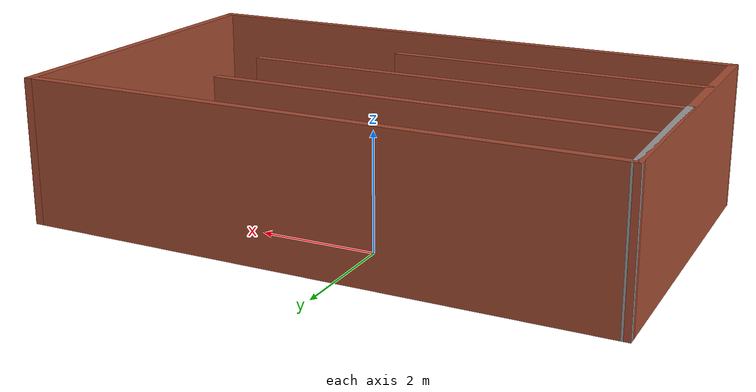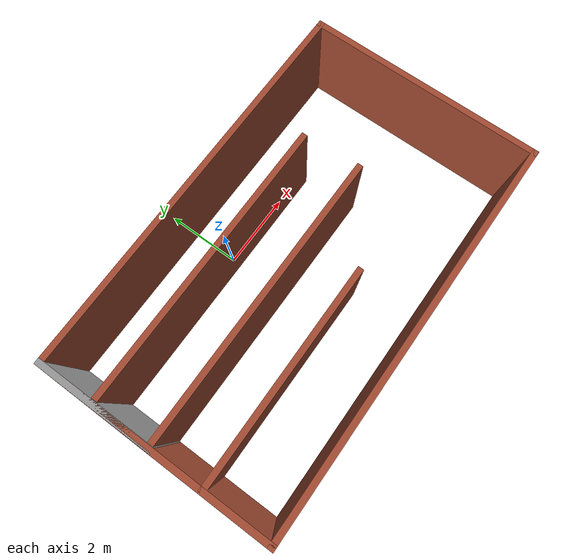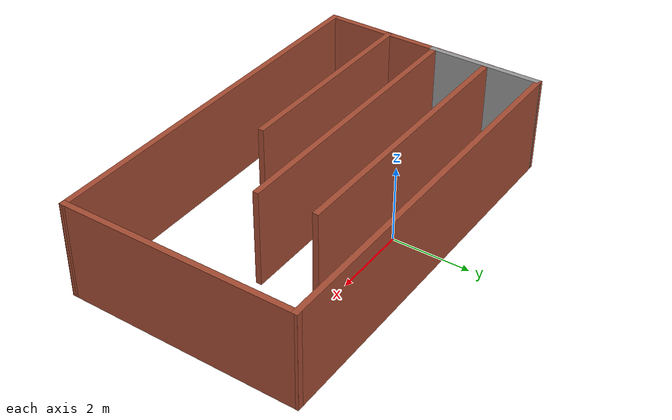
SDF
<?xml version='1.0'?>
<sdf version='1.7'>
  <model name='sample_maze'>
    <pose>0.574925 -1.69761 0 0 -0 0</pose>
    <link name='Wall_0'>
      <collision name='Wall_0_Collision'>
        <geometry>
          <box>
            <size>3.03529 0.15 2.5</size>
          </box>
        </geometry>
        <pose>0 0 1.25 0 -0 0</pose>
      </collision>
      <visual name='Wall_0_Visual'>
        <pose>0 0 1.25 0 -0 0</pose>
        <geometry>
          <box>
            <size>3.03529 0.15 2.5</size>
          </box>
        </geometry>
        <material>
          <script>
            <uri>file://media/materials/scripts/gazebo.material</uri>
            <name>Gazebo/Grey</name>
          </script>
          <ambient>1 1 1 1</ambient>
        </material>
        <meta>
          <layer>0</layer>
        </meta>
      </visual>
      <pose>-4.98487 1.49994 0 0 -0 1.57769</pose>
    </link>
    <link name='Wall_1'>
      <collision name='Wall_1_Collision'>
        <geometry>
          <box>
            <size>6.03552 0.15 2.5</size>
          </box>
        </geometry>
        <pose>0 0 1.25 0 -0 0</pose>
      </collision>
      <visual name='Wall_1_Visual'>
        <pose>0 0 1.25 0 -0 0</pose>
        <geometry>
          <box>
            <size>6.03552 0.15 2.5</size>
          </box>
        </geometry>
        <material>
          <script>
            <uri>file://media/materials/scripts/gazebo.material</uri>
            <name>Gazebo/Bricks</name>
          </script>
          <ambient>1 1 1 1</ambient>
        </material>
        <meta>
          <layer>0</layer>
        </meta>
      </visual>
      <pose>-4.98487 -6.5e-05 0 0 -0 -1.56742</pose>
    </link>
    <link name='Wall_10'>
      <collision name='Wall_10_Collision'>
        <geometry>
          <box>
            <size>7.25 0.15 2.5</size>
          </box>
        </geometry>
        <pose>0 0 1.25 0 -0 0</pose>
      </collision>
      <visual name='Wall_10_Visual'>
        <pose>0 0 1.25 0 -0 0</pose>
        <geometry>
          <box>
            <size>7.25 0.15 2.5</size>
          </box>
        </geometry>
        <material>
          <script>
            <uri>file://media/materials/scripts/gazebo.material</uri>
            <name>Gazebo/Bricks</name>
          </script>
          <ambient>1 1 1 1</ambient>
        </material>
        <meta>
          <layer>0</layer>
        </meta>
      </visual>
      <pose>-1.27402 1.54146 0 0 -0 0</pose>
    </link>
    <link name='Wall_2'>
      <collision name='Wall_2_Collision'>
        <geometry>
          <box>
            <size>10.12 0.15 2.5</size>
          </box>
        </geometry>
        <pose>0 0 1.25 0 -0 0</pose>
      </collision>
      <visual name='Wall_2_Visual'>
        <pose>0 0 1.25 0 -0 0</pose>
        <geometry>
          <box>
            <size>10.12 0.15 2.5</size>
          </box>
        </geometry>
        <material>
          <script>
            <uri>file://media/materials/scripts/gazebo.material</uri>
            <name>Gazebo/Bricks</name>
          </script>
          <ambient>1 1 1 1</ambient>
        </material>
        <meta>
          <layer>0</layer>
        </meta>
      </visual>
      <pose>0.010075 -2.94239 0 0 -0 0</pose>
    </link>
    <link name='Wall_3'>
      <collision name='Wall_3_Collision'>
        <geometry>
          <box>
            <size>6.02552 0.15 2.5</size>
          </box>
        </geometry>
        <pose>0 0 1.25 0 -0 0</pose>
      </collision>
      <visual name='Wall_3_Visual'>
        <pose>0 0 1.25 0 -0 0</pose>
        <geometry>
          <box>
            <size>6.02552 0.15 2.5</size>
          </box>
        </geometry>
        <material>
          <script>
            <uri>file://media/materials/scripts/gazebo.material</uri>
            <name>Gazebo/Bricks</name>
          </script>
          <ambient>1 1 1 1</ambient>
        </material>
        <meta>
          <layer>0</layer>
        </meta>
      </visual>
      <pose>4.98513 0.004935 0 0 -0 1.57418</pose>
    </link>
    <link name='Wall_4'>
      <collision name='Wall_4_Collision'>
        <geometry>
          <box>
            <size>10.12 0.15 2.5</size>
          </box>
        </geometry>
        <pose>0 0 1.25 0 -0 0</pose>
      </collision>
      <visual name='Wall_4_Visual'>
        <pose>0 0 1.25 0 -0 0</pose>
        <geometry>
          <box>
            <size>10.12 0.15 2.5</size>
          </box>
        </geometry>
        <material>
          <script>
            <uri>file://media/materials/scripts/gazebo.material</uri>
            <name>Gazebo/Bricks</name>
          </script>
          <ambient>1 1 1 1</ambient>
        </material>
        <meta>
          <layer>0</layer>
        </meta>
      </visual>
      <pose>-0.009812 2.94226 0 0 -0 3.14159</pose>
    </link>
    <link name='Wall_6'>
      <collision name='Wall_6_Collision'>
        <geometry>
          <box>
            <size>5.5 0.15 2.5</size>
          </box>
        </geometry>
        <pose>0 0 1.25 0 -0 0</pose>
      </collision>
      <visual name='Wall_6_Visual'>
        <pose>0 0 1.25 0 -0 0</pose>
        <geometry>
          <box>
            <size>5.5 0.15 2.5</size>
          </box>
        </geometry>
        <material>
          <script>
            <uri>file://media/materials/scripts/gazebo.material</uri>
            <name>Gazebo/Bricks</name>
          </script>
          <ambient>1 1 1 1</ambient>
        </material>
        <meta>
          <layer>0</layer>
        </meta>
      </visual>
      <pose>-2.26993 -1.26706 0 0 -0 0</pose>
    </link>
    <link name='Wall_8'>
      <collision name='Wall_8_Collision'>
        <geometry>
          <box>
            <size>7.5 0.15 2.5</size>
          </box>
        </geometry>
        <pose>0 0 1.25 0 -0 0</pose>
      </collision>
      <visual name='Wall_8_Visual'>
        <pose>0 0 1.25 0 -0 0</pose>
        <geometry>
          <box>
            <size>7.5 0.15 2.5</size>
          </box>
        </geometry>
        <material>
          <script>
            <uri>file://media/materials/scripts/gazebo.material</uri>
            <name>Gazebo/Bricks</name>
          </script>
          <ambient>1 1 1 1</ambient>
        </material>
        <meta>
          <layer>0</layer>
        </meta>
      </visual>
      <pose>-1.29004 0.087147 0 0 -0 0</pose>
    </link>
    <static>1</static>
  </model>
</sdf>
